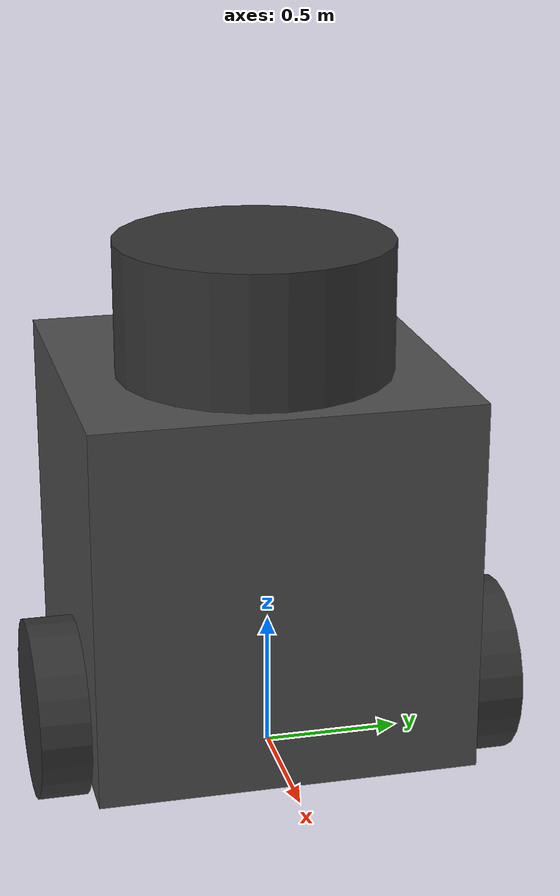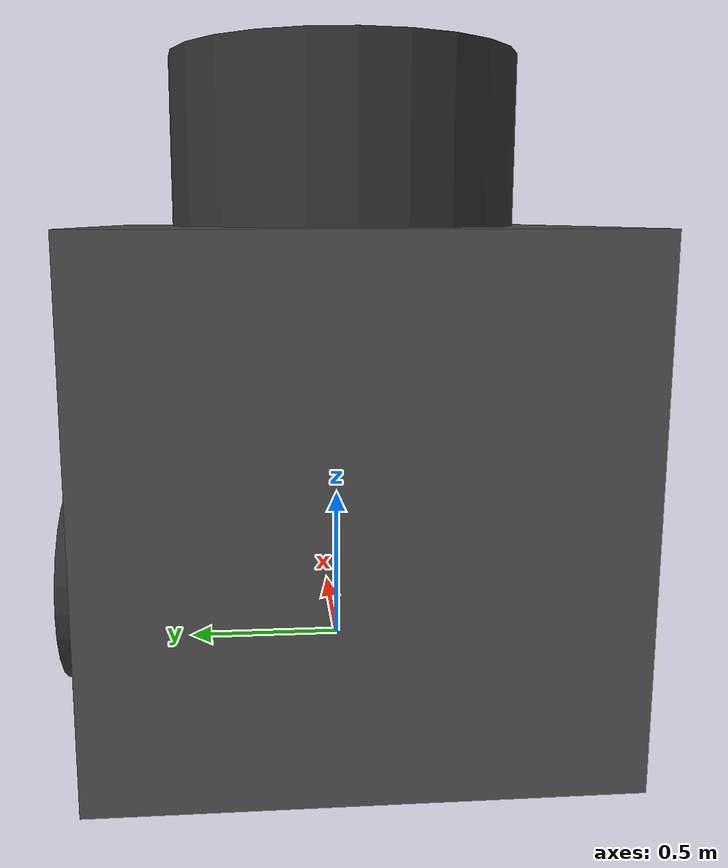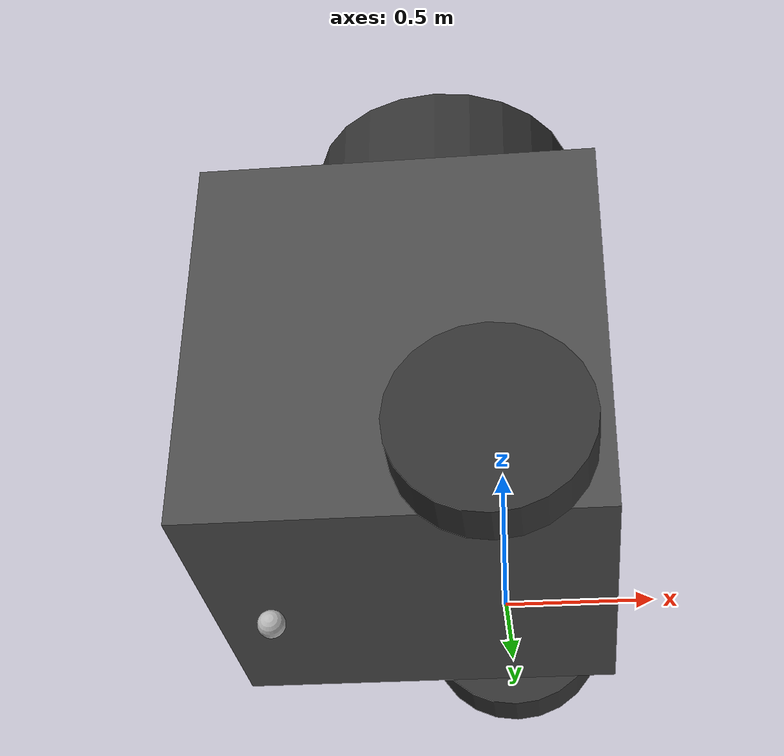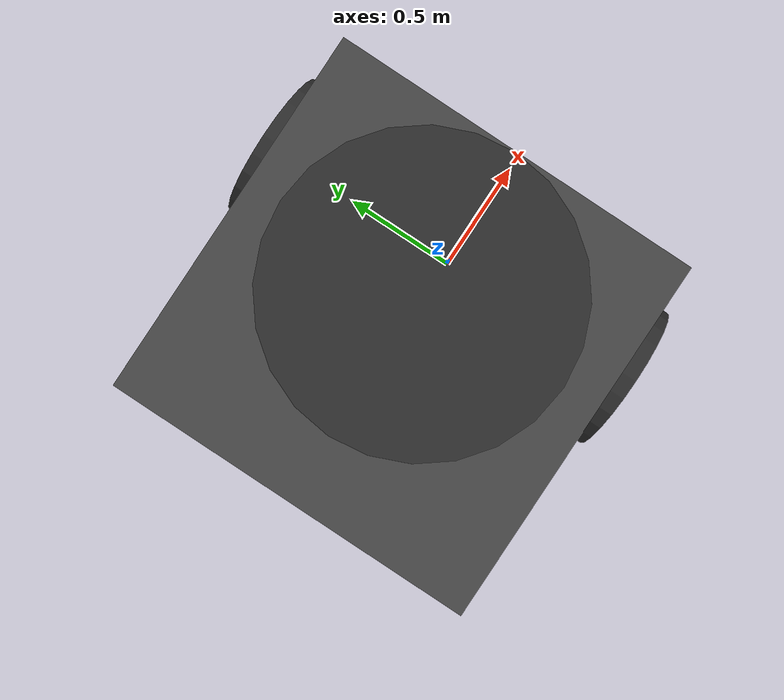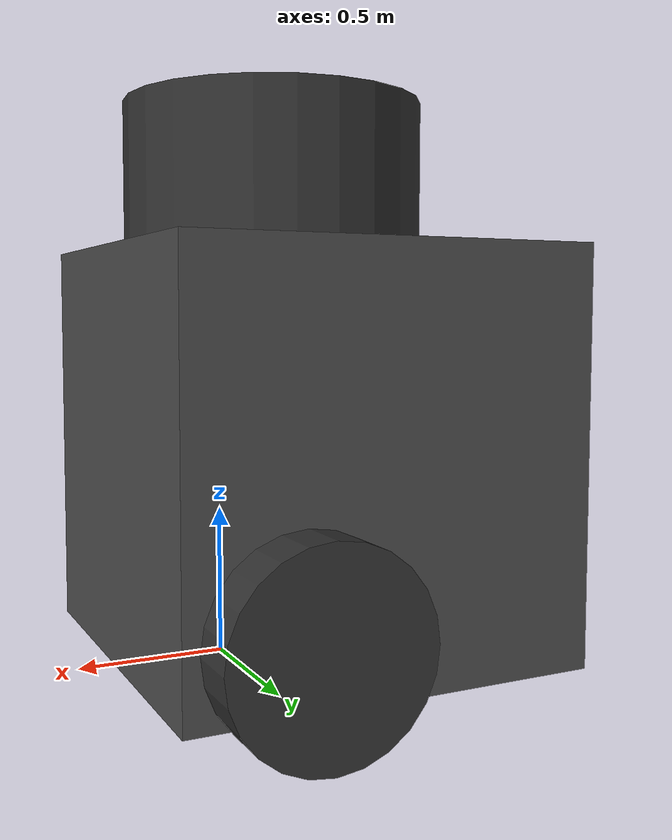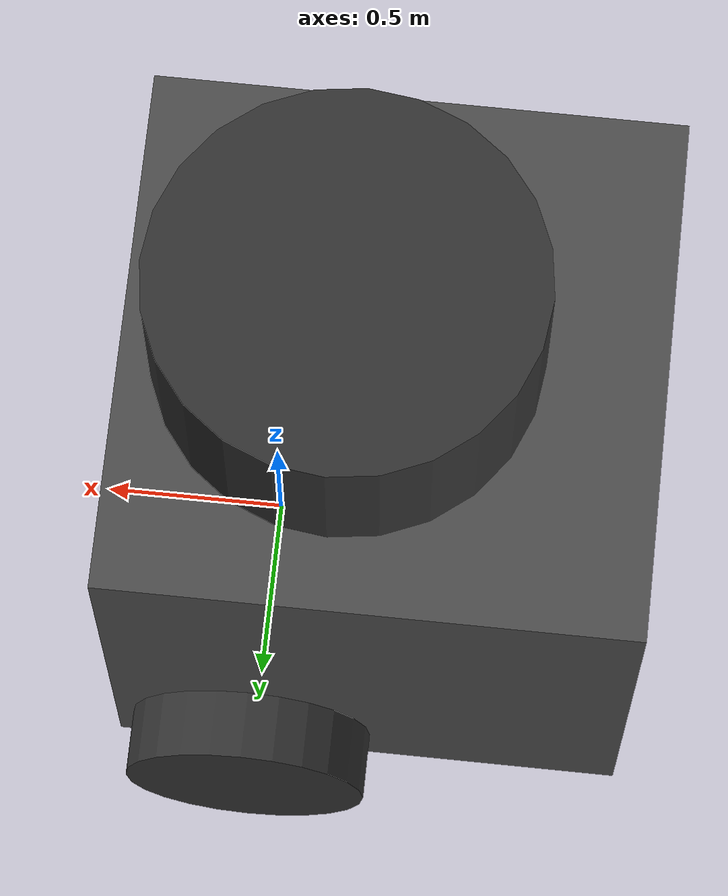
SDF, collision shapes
<?xml version="1.0" ?>
<sdf version="1.5">
<!-- turtlebot3 -->
  <model name="turtlebot3_burger">
    <pose>0.0 0.0 0.0 0.0 0.0 0.0</pose>

    <link name="base_footprint"/>

    <link name="base_link">

      <inertial>
        <pose>-0.32 0 0.70 0 0 0</pose>
        <inertia>
          <ixx>72.397393</ixx>
          <ixy>4.686399e-09</ixy>
          <ixz>-1.09525703e-07</ixz>
          <iyy>72.397393</iyy>
          <iyz>2.8582649e-08</iyz>
          <izz>65.3050163</izz>
        </inertia>
        <mass>82.573504</mass>
      </inertial>

      <collision name="base_collision">
        <pose>-0.32 0 0.70 0 0 0</pose>
        <geometry>
          <box>
            <size>1.40 1.40 1.40</size>
          </box>
        </geometry>
      </collision>

      <visual name="base_visual">
        <pose>-0.32 0 0 0 0 0</pose>
        <geometry>
          <mesh>
            <uri>meshes/bases/burger_base.stl</uri>
            <scale>0.01 0.01 0.01</scale>
          </mesh>
        </geometry>
        <material>
          <ambient>0.3 0.3 0.3 1.0</ambient>
          <diffuse>0.3 0.3 0.3 1.0</diffuse>
        </material>
      </visual>
    </link>

    <link name="imu_link">
      <sensor name="tb3_imu" type="imu">
        <always_on>true</always_on>
        <update_rate>200</update_rate>
        <imu>
          <angular_velocity>
            <x>
              <noise type="gaussian">
                <mean>0.0</mean>
                <stddev>2e-4</stddev>
              </noise>
            </x>
            <y>
              <noise type="gaussian">
                <mean>0.0</mean>
                <stddev>2e-4</stddev>
              </noise>
            </y>
            <z>
              <noise type="gaussian">
                <mean>0.0</mean>
                <stddev>2e-4</stddev>
              </noise>
            </z>
          </angular_velocity>
          <linear_acceleration>
            <x>
              <noise type="gaussian">
                <mean>0.0</mean>
                <stddev>1.7e-2</stddev>
              </noise>
            </x>
            <y>
              <noise type="gaussian">
                <mean>0.0</mean>
                <stddev>1.7e-2</stddev>
              </noise>
            </y>
            <z>
              <noise type="gaussian">
                <mean>0.0</mean>
                <stddev>1.7e-2</stddev>
              </noise>
            </z>
          </linear_acceleration>
        </imu>

        <plugin filename="libignition-gazebo-imu-system.so"
          name="ignition::gazebo::systems::Imu">
          <ros>
            <remapping>~/out:=imu</remapping>
          </ros>
        </plugin>
      </sensor>
    </link>

    <link name="base_scan">
      <inertial>
        <pose>-0.20 0 1.61 0 0 0</pose>
        <inertia>
          <ixx>0.01</ixx>
          <ixy>0.000</ixy>
          <ixz>0.000</ixz>
          <iyy>0.01</iyy>
          <iyz>0.000</iyz>
          <izz>0.01</izz>
        </inertia>
        <mass>1.14</mass>
      </inertial>

      <collision name="lidar_sensor_collision">
        <pose>-0.20 0 1.61 0 0 0</pose>
        <geometry>
          <cylinder>
            <radius>0.508</radius>
            <length>0.55</length>
          </cylinder>
        </geometry>
      </collision>

      <visual name="lidar_sensor_visual">
        <pose>-0.32 0 1.71 0 0 0</pose>
        <geometry>
          <mesh>
            <uri>meshes/sensors/lds.stl</uri>
            <scale>0.01 0.01 0.01</scale>
          </mesh>
        </geometry>
        <material>
          <ambient>0.2 0.2 0.2 1.0</ambient>
          <diffuse>0.2 0.2 0.2 1.0</diffuse>
        </material>
      </visual>

      <sensor name="hls_lfcd_lds" type="ray">
        <always_on>true</always_on>
        <visualize>true</visualize>
        <pose>-0.32 0 1.71 0 0 0</pose>
        <update_rate>5</update_rate>
        <ray>
          <scan>
            <horizontal>
              <samples>360</samples>
              <resolution>1.000000</resolution>
              <min_angle>0.000000</min_angle>
              <max_angle>6.280000</max_angle>
            </horizontal>
          </scan>
          <range>
            <min>1.20</min>
            <max>35.0</max>
            <resolution>0.15</resolution>
          </range>
          <noise>
            <type>gaussian</type>
            <mean>0.0</mean>
            <stddev>0.01</stddev>
          </noise>
        </ray>
        <plugin filename="libignition-gazebo-sensors-system.so" name="ignition::gazebo::systems::Sensors">
          <ros>
            <remapping>~/out:=scan</remapping>
          </ros>
          <output_type>sensor_msgs/LaserScan</output_type>
          <frame_name>base_scan</frame_name>
        </plugin>
      </sensor>
    </link>

    <link name="wheel_left_link">
      <inertial>
        <pose>0 0.8 0.23 -1.57 0 0</pose>
        <inertia>
          <ixx>1.8158194e-02</ixx>
          <ixy>-9.3392e-11</ixy>
          <ixz>1.04909e-10</ixz>
          <iyy>3.2922126e-02</iyy>
          <iyz>5.75694e-10</iyz>
          <izz>1.8158194e-02</izz>
        </inertia>
        <mass>0.28498940</mass>
      </inertial>

      <collision name="wheel_left_collision">
        <pose>0 0.8 0.23 -1.57 0 0</pose>
        <geometry>
          <cylinder>
            <radius>0.33</radius>
            <length>0.18</length>
          </cylinder>
        </geometry>
        <surface>
          <!-- This friction pamareter don't contain reliable data!! -->
          <friction>
            <ode>
              <mu>100000.0</mu>
              <mu2>100000.0</mu2>
              <fdir1>0 0 0</fdir1>
              <slip1>0.0</slip1>
              <slip2>0.0</slip2>
            </ode>
          </friction>
          <contact>
            <ode>
              <soft_cfm>0</soft_cfm>
              <soft_erp>0.2</soft_erp>
              <kp>1e+5</kp>
              <kd>1</kd>
              <max_vel>0.01</max_vel>
              <min_depth>0.001</min_depth>
            </ode>
          </contact>
        </surface>
      </collision>

      <visual name="wheel_left_visual">
        <pose>0 0.8 0.23 0 0 0</pose>
        <geometry>
          <mesh>
            <uri>meshes/wheels/left_tire.stl</uri>
            <scale>0.01 0.01 0.01</scale>
          </mesh>
        </geometry>
        <material>
          <ambient>0.2 0.2 0.2 1.0</ambient>
          <diffuse>0.2 0.2 0.2 1.0</diffuse>
        </material>
      </visual>
    </link>

    <link name="wheel_right_link">

      <inertial>
        <pose>0.0 -0.8 0.23 -1.57 0 0</pose>
        <inertia>
          <ixx>1.8158194e-02</ixx>
          <ixy>-9.3392e-11</ixy>
          <ixz>1.04909e-10</ixz>
          <iyy>3.2922126e-02</iyy>
          <iyz>5.75694e-10</iyz>
          <izz>1.8158194e-02</izz>
        </inertia>
        <mass>0.28498940</mass>
      </inertial>

      <collision name="wheel_right_collision">
        <pose>0.0 -0.8 0.23 -1.57 0 0</pose>
        <geometry>
          <cylinder>
            <radius>0.33</radius>
            <length>0.18</length>
          </cylinder>
        </geometry>
        <surface>
          <!-- This friction pamareter don't contain reliable data!! -->
          <friction>
            <ode>
              <mu>100000.0</mu>
              <mu2>100000.0</mu2>
              <fdir1>0 0 0</fdir1>
              <slip1>0.0</slip1>
              <slip2>0.0</slip2>
            </ode>
          </friction>
          <contact>
            <ode>
              <soft_cfm>0</soft_cfm>
              <soft_erp>0.2</soft_erp>
              <kp>1e+5</kp>
              <kd>1</kd>
              <max_vel>0.01</max_vel>
              <min_depth>0.001</min_depth>
            </ode>
          </contact>
        </surface>
      </collision>

      <visual name="wheel_right_visual">
        <pose>0.0 -0.8 0.23 0 0 0</pose>
        <geometry>
          <mesh>
            <uri>meshes/wheels/right_tire.stl</uri>
            <scale>0.01 0.01 0.01</scale>
          </mesh>
        </geometry>
        <material>
          <ambient>0.2 0.2 0.2 1.0</ambient>
          <diffuse>0.2 0.2 0.2 1.0</diffuse>
        </material>
      </visual>
    </link>

    <link name='caster_back_link'>
      <pose>-0.81 0 -0.04 -1.57 0 0</pose>
      <inertial>
        <mass>0.05</mass>
        <inertia>
          <ixx>0.01</ixx>
          <ixy>0.000</ixy>
          <ixz>0.000</ixz>
          <iyy>0.01</iyy>
          <iyz>0.000</iyz>
          <izz>0.01</izz>
        </inertia>
      </inertial>
      <collision name='collision'>
        <geometry>
          <sphere>
            <radius>0.05</radius>
          </sphere>
        </geometry>
        <surface>
          <contact>
            <ode>
              <soft_cfm>0</soft_cfm>
              <soft_erp>0.2</soft_erp>
              <kp>1e+5</kp>
              <kd>1</kd>
              <max_vel>0.01</max_vel>
              <min_depth>0.001</min_depth>
            </ode>
          </contact>
        </surface>
      </collision>
    </link>

    <joint name="base_joint" type="fixed">
      <parent>base_footprint</parent>
      <child>base_link</child>
      <pose>0.0 0.0 0.10 0 0 0</pose>
    </joint>

    <joint name="wheel_left_joint" type="revolute">
      <parent>base_link</parent>
      <child>wheel_left_link</child>
      <pose>0.0 0.8 0.23 -1.57 0 0</pose>
      <axis>
        <xyz>0 0 1</xyz>
      </axis>
    </joint>

    <joint name="wheel_right_joint" type="revolute">
      <parent>base_link</parent>
      <child>wheel_right_link</child>
      <pose>0.0 -0.8 0.23 -1.57 0 0</pose>
      <axis>
        <xyz>0 0 1</xyz>
      </axis>
    </joint>

    <joint name='caster_back_joint' type='ball'>
      <parent>base_link</parent>
      <child>caster_back_link</child>
    </joint>

    <joint name="imu_joint" type="fixed">
      <parent>base_link</parent>
      <child>imu_link</child>
      <pose>-0.32 0 0.68 0 0 0</pose>
      <axis>
        <xyz>0 0 1</xyz>
      </axis>
    </joint>

    <joint name="lidar_joint" type="fixed">
      <parent>base_link</parent>
      <child>base_scan</child>
      <pose>-0.32 0 1.71 0 0 0</pose>
      <axis>
        <xyz>0 0 1</xyz>
      </axis>
    </joint>

    <plugin filename="libignition-gazebo-diff-drive-system.so"
     name="ignition::gazebo::systems::DiffDrive">

      <ros>
      </ros>

      <update_rate>30</update_rate>

      <!-- wheels -->
      <left_joint>wheel_left_joint</left_joint>
      <right_joint>wheel_right_joint</right_joint>

      <!-- kinematics -->
      <wheel_separation>1.60</wheel_separation>
      <wheel_diameter>0.66</wheel_diameter>

      <!-- limits -->
      <max_wheel_torque>2000</max_wheel_torque>
      <max_wheel_acceleration>10.0</max_wheel_acceleration>

      <command_topic>cmd_vel</command_topic>

      <!-- output -->
      <publish_odom>true</publish_odom>
      <publish_odom_tf>true</publish_odom_tf>
      <publish_wheel_tf>false</publish_wheel_tf>

      <odometry_topic>odom</odometry_topic>
      <odometry_frame>odom</odometry_frame>
      <robot_base_frame>base_footprint</robot_base_frame>

    </plugin>

     <plugin filename="libignition-gazebo-joint-state-publisher-system.so"
     name="ignition::gazebo::systems::JointStatePublisher">
      <ros>
        <remapping>~/out:=joint_states</remapping>
      </ros>
      <update_rate>30</update_rate>
      <joint_name>wheel_left_joint</joint_name>
      <joint_name>wheel_right_joint</joint_name>
    </plugin>
  </model>
</sdf>
